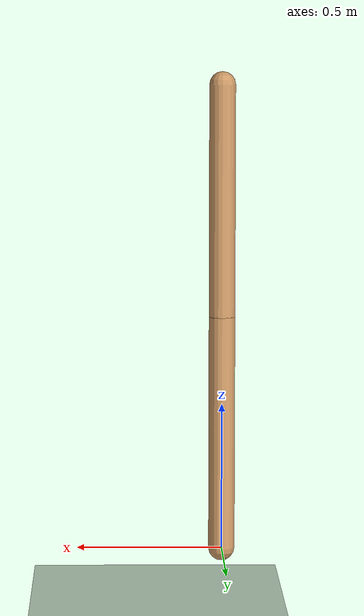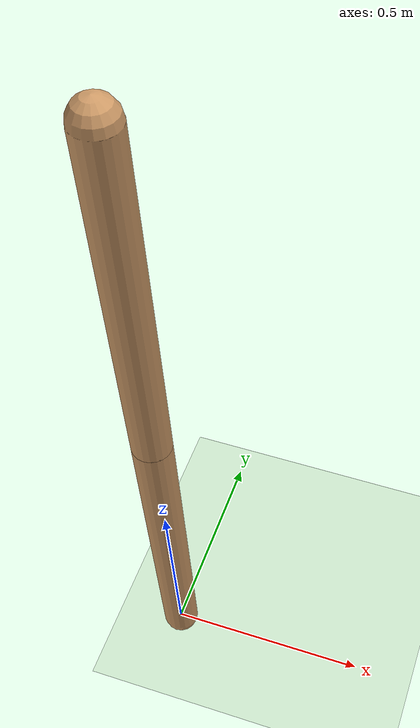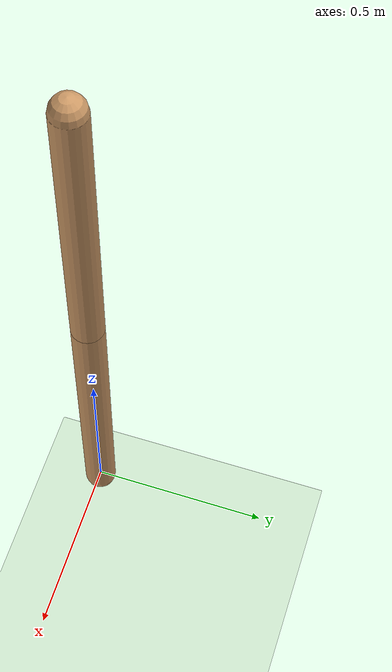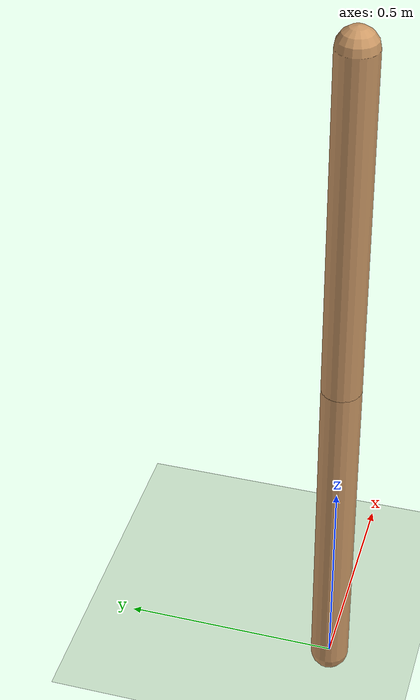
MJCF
<mujoco model="IDP_custom">
  <compiler angle="radian" coordinate="local" inertiafromgeom="false" />
  <default>
    <joint damping="0.0" />
    <geom contype="0" friction="0.0 0.0 0.0" />
  </default>
  <option gravity="0 0 -9.81" integrator="RK4" timestep="0.0083333333" />
  <size nstack="3000" nuser_actuator="10" nuserdata="100" />
  <asset>
    <texture builtin="gradient" height="100" rgb1=".4 .5 .6" rgb2="0 0 0" type="skybox" width="100" />
    <texture builtin="flat" height="1278" mark="cross" markrgb="1 1 1" name="texgeom" random="0.01" rgb1="0.8 0.6 0.4" rgb2="0.8 0.6 0.4" type="cube" width="127" />
    <texture builtin="checker" height="100" name="texplane" rgb1="0 0 0" rgb2="0.8 0.8 0.8" type="2d" width="100" />
    <material name="MatPlane" reflectance="0.5" shininess="1" specular="1" texrepeat="60 60" texture="texplane" />
    <material name="geom" texture="texgeom" texuniform="true" />
  </asset>
  <worldbody>
    <light cutoff="100" diffuse="1 1 1" dir="-0 0 -1.3" directional="true" exponent="1" pos="0 0 1.3" specular=".1 .1 .1" />
    <geom condim="3" friction="1 .1 .1" material="MatPlane" name="floor" pos="0 0 -0.1" rgba="0.8 0.9 0.8 1" size="20 20 0.125" type="plane" />
    <body name="leg" pos="0 0 0">
      <joint axis="0 -1 0" damping="0.0" limited="true" name="ank" pos="0 0 0" range="-1.0 1.0" stiffness="0.0" type="hinge" />
      <geom fromto="0 0 0 0 0 0.8050" name="cpole" rgba="0.8 0.6 0.4 1.0" size="0.045" type="capsule" />
      <inertial diaginertia="1.073581 1.073581 0.001" mass="21.0865" pos="0 0 0.5160" />
      <body name="body" pos="0 0 0.8050">
        <joint axis="0 -1 0" damping="0.0" limited="true" name="hip" pos="0 0 0" range="-2.1 2.1" stiffness="0.0" type="hinge" />
        <geom fromto="0 0 0 0 0 0.7980" name="cpole2" rgba="0.8 0.6 0.4 1.0" size="0.045" type="capsule" />
        <inertial diaginertia="1.432992 1.432992 0.001" mass="43.4886" pos="0 0 0.2941" />
      </body>
    </body>
  </worldbody>
  <actuator>
    <motor ctrllimited="true" ctrlrange="-1.0 1.0" gear="100" joint="ank" name="ank"/>
    <motor ctrllimited="true" ctrlrange="-1.0 1.0" gear="150" joint="hip" name="hip"/>
  </actuator>
</mujoco>
